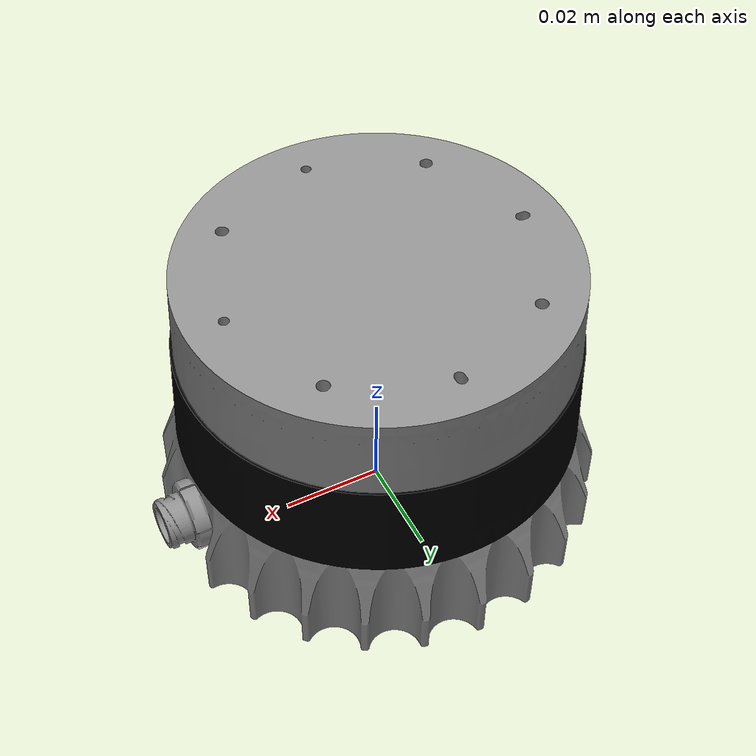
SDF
<?xml version="1.0" ?>
<sdf version="1.6">
  <model name="ouster_os1">
    <link name="ouster_os1_link">
      <pose>0 0 0 0 0 0</pose>
      <inertial>
        <pose>0 0 0 0 0 0</pose>
        <mass>0.502</mass>
        <inertia>
          <ixx>0.0009080594249999999</ixx>
          <ixy>0</ixy>
          <ixz>0</ixz>
          <iyy>0.0009080594249999999</iyy>
          <iyz>0</iyz>
          <izz>0.0011049624</izz>
        </inertia>
      </inertial>
      <collision name="collision">
        <pose>0 0 0.029 0 0 0</pose>
        <geometry>
          <cylinder>
            <radius>0.0435</radius>
            <length>0.05835</length>
          </cylinder>
        </geometry>
      </collision>
      <visual name="visual">
        <pose>0 0 0 1.57 0 -1.57</pose>
        <geometry>
          <mesh>
            <uri>model://ouster_os1/meshes/ouster_os1.dae</uri>
          </mesh>
        </geometry>
      </visual>
    </link>
  </model>
</sdf>
